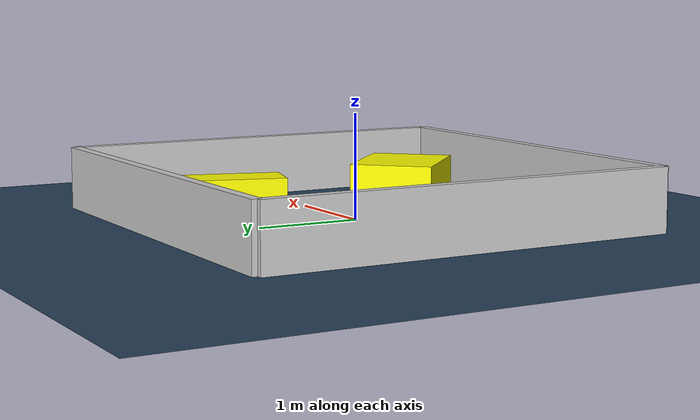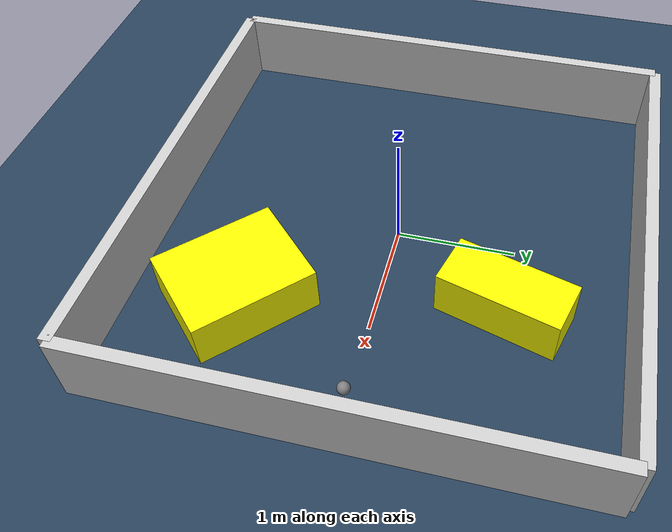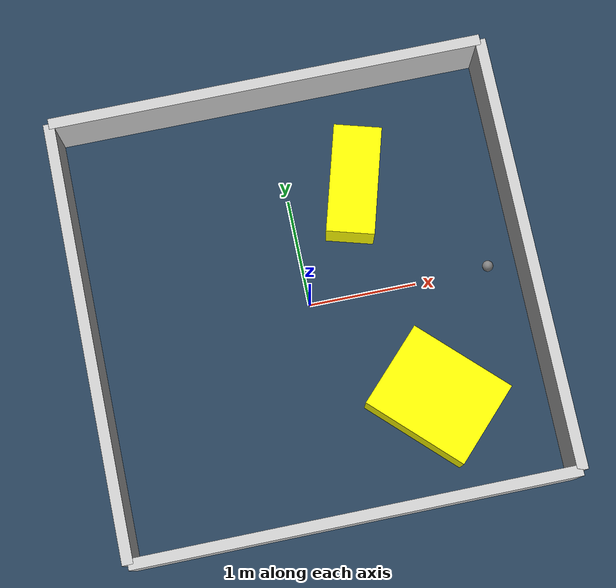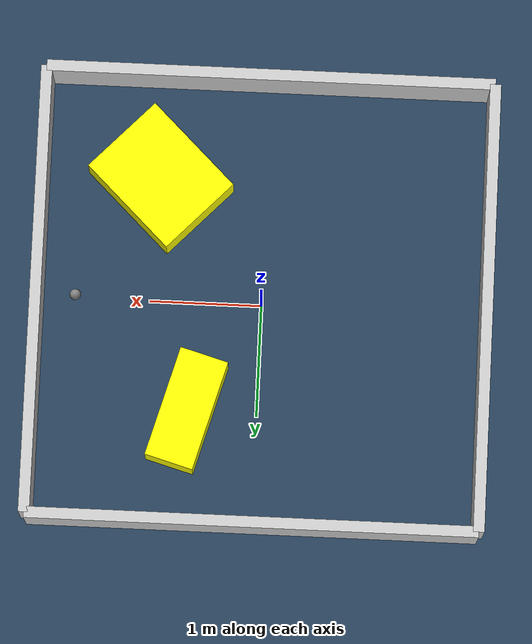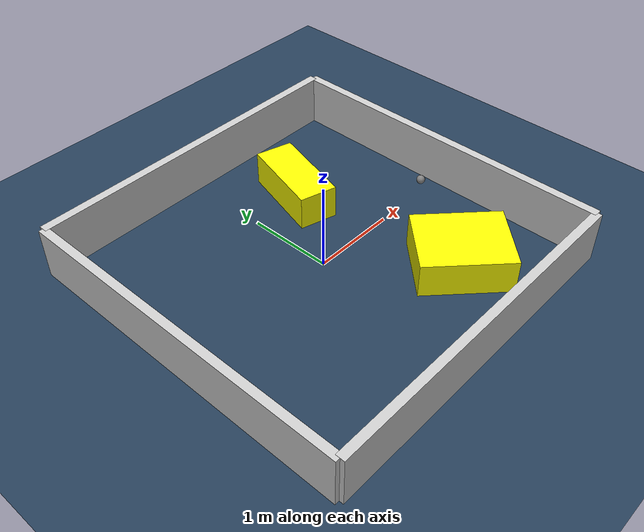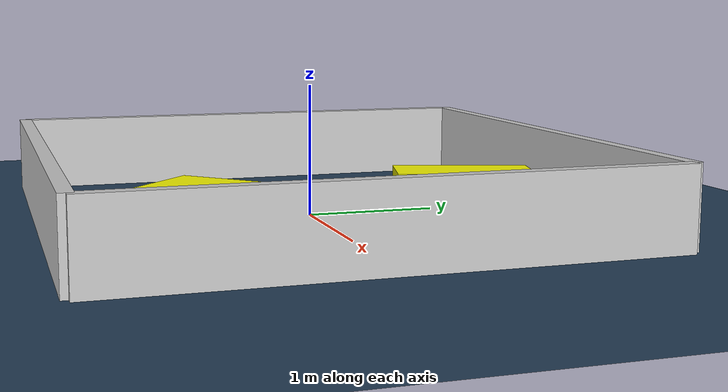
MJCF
<?xml version="1.0" ?>
<mujoco model="generated_environment">
  <option timestep="0.01" integrator="RK4" cone="elliptic"/>
  <default>
    <geom density="1"/>
  </default>
  <asset>
    <texture builtin="gradient" height="3072" rgb1="0.3 0.5 0.7" rgb2="0 0 0" type="skybox" width="512"/>
    <texture builtin="checker" height="300" mark="edge" markrgb="0.8 0.8 0.8" name="groundplane" rgb1="0.2 0.3 0.4" rgb2="0.1 0.2 0.3" type="2d" width="300"/>
    <material name="groundplane" reflectance="0.2" texrepeat="5 5" texture="groundplane" texuniform="true"/>
    <material name="robot" rgba="0.0 1.0 0.0 1"/>
  </asset>
  <worldbody>
    <light dir="0 0 -1" directional="true" pos="0 0 1.5"/>
    <geom condim="4" friction="1.0 0.005 0.001" material="groundplane" name="floor" size="0 0 0.05" type="plane"/>
    <body name="walls">
      <geom name="wall_1" condim="4" pos="-2.0 0.0 0.3" rgba="0.800000011920929 0.800000011920929 0.800000011920929 1.0" size="0.05 2.0 0.3" type="box"/>
      <geom name="wall_2" condim="4" pos="2.0 0.0 0.3" rgba="0.800000011920929 0.800000011920929 0.800000011920929 1.0" size="0.05 2.0 0.3" type="box"/>
      <geom name="wall_3" condim="4" pos="0.0 -2.0 0.3" rgba="0.800000011920929 0.800000011920929 0.800000011920929 1.0" size="2.0 0.05 0.3" type="box"/>
      <geom name="wall_4" condim="4" pos="0.0 2.0 0.3" rgba="0.800000011920929 0.800000011920929 0.800000011920929 1.0" size="2.0 0.05 0.3" type="box"/>
    </body>
    <body name="robot">
      <joint name="joint_x" type="slide" pos="0 0 0" axis="1 0 0"/>
      <joint name="joint_y" type="slide" pos="0 0 0" axis="0 1 0"/>
      <geom name="robot" type="sphere" pos="1.6609404411941449 -0.0048961901455402135 0.2" size="0.05" mass="5." friction="1.0 0.005 0.0001" condim="4"/>
      <site name="sensor_ball"/>
    </body>
    <body name="obstacle_1_movable">
      <geom name="obstacle_1_movable" condim="4" pos="0.6182395442636808 0.9963879396336395 0.2" euler="0 0 344.15421440841413" friction="1.0 0.005 0.001" rgba="1 1 0 1" size="0.22132421595143825 0.5036435247621254 0.2" type="box" mass="0.1"/>
      <joint type="free"/>
    </body>
    <body name="obstacle_2_movable">
      <geom name="obstacle_2_movable" condim="4" pos="0.9450641602384837 -1.086655248046473 0.2" euler="0 0 315.9668234848982" friction="1.0 0.005 0.001" rgba="1 1 0 1" size="0.50826006531605 0.41095606010089725 0.2" type="box" mass="0.1"/>
      <joint type="free"/>
    </body>
  </worldbody>
  <actuator>
    <motor name="actuator_x" joint="joint_x" gear="1" ctrlrange="-1 1"/>
    <motor name="actuator_y" joint="joint_y" gear="1" ctrlrange="-1 1"/>
  </actuator>
</mujoco>
